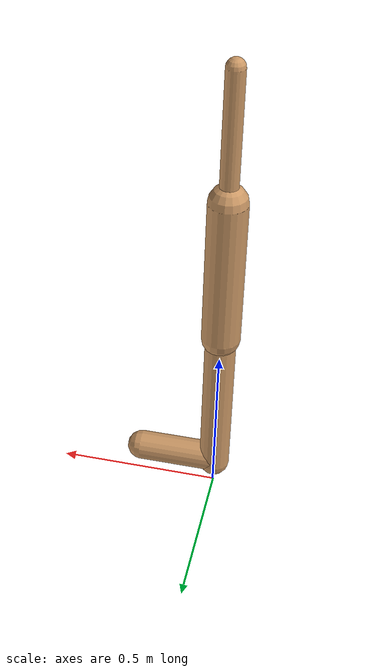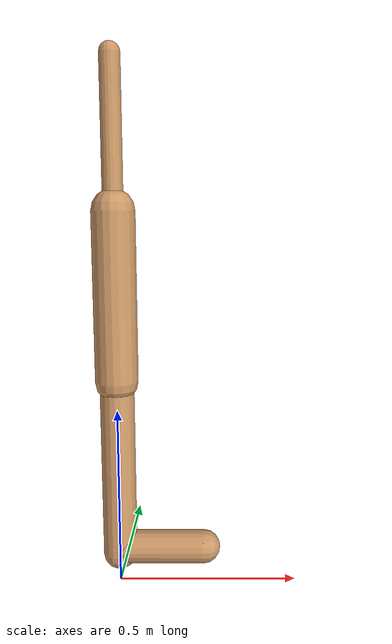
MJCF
<mujoco model="walker2d">
  <compiler angle="degree" coordinate="global" inertiafromgeom="true" />
  <default>
    <joint armature="0.01" damping=".1" limited="true" />
    <geom conaffinity="0" condim="3" contype="1" density="1000" friction="0.8 .1 .1" rgba="0.8 0.6 .4 1" />
  </default>
  <option integrator="RK4" timestep="0.002" />
  <worldbody>

    <body name="torso" pos="0 0 0.0304444901506249">
      <joint armature="0" axis="1 0 0" damping="0" limited="false" name="ignorex" pos="0 0 0" stiffness="0" type="slide" />
      <joint armature="0" axis="0 0 1" damping="0" limited="false" name="ignorez" pos="0 0 0" ref="1.25" stiffness="0" type="slide" />
      <joint armature="0" axis="0 1 0" damping="0" limited="false" name="ignorey" pos="0 0 0" stiffness="0" type="hinge" />
      <geom fromto="0 0 1.45 0 0 1.05" name="torso_geom" size="0.02803882690158247" type="capsule" />
      <body name="thigh">
        <joint axis="0 -1 0" name="thigh_joint" pos="0 0 1.05" range="-150 0" type="hinge" />
        <geom fromto="0.0 0.0 1.05 0.0 0.0 0.585578925718125" name="thigh_geom" size="0.05927657039241784" type="capsule" />
        <body name="leg" pos="0.0 0.0 -0.014421074281875002">
          <joint axis="0 -1 0" name="leg_joint" pos="0 0 0.6" range="-150 0" type="hinge" />
          <geom fromto="0.0 0.0 0.6 0.0 0.0 0.08397658413125006" name="leg_geom" size="0.04742125631393427" type="capsule" />
          <body name="foot" pos="0.0 0.0 -0.016023415868749946">
            <joint axis="0 -1 0" name="foot_joint" pos="0 0 0.1" range="-45 45" type="hinge" />
            <geom fromto="-0.0 0.0 0.1 0.23813403811055942 0.0 0.1" name="foot_geom" size="0.046860829718084335" type="capsule" />
          </body>
        </body>
      </body>

      <body name="thigh_left">
        <joint axis="0 -1 0" name="thigh_left_joint" pos="0 0 1.05" range="-150 0" type="hinge" />
        <geom fromto="0.0 0.0 1.05 0.0 0.0 0.585578925718125" name="thigh_left_geom" rgba=".7 .3 .6 1" size="0.05927657039241784" type="capsule" />
        <body name="leg_left" pos="0.0 0.0 -0.014421074281875002">
          <joint axis="0 -1 0" name="leg_left_joint" pos="0 0 0.6" range="-150 0" type="hinge" />
          <geom fromto="0.0 0.0 0.6 0.0 0.0 0.08397658413125006" name="leg_left_geom" rgba=".7 .3 .6 1" size="0.04742125631393427" type="capsule" />
          <body name="foot_left" pos="0.0 0.0 -0.016023415868749946">
            <joint axis="0 -1 0" name="foot_left_joint" pos="0 0 0.1" range="-45 45" type="hinge" />
            <geom fromto="-0.0 0.0 0.1 0.23813403811055942 0.0 0.1" name="foot_left_geom" rgba=".7 .3 .6 1" size="0.046860829718084335" type="capsule" />
          </body>
        </body>
      </body>
    </body>
  </worldbody>
  <actuator>

    <motor ctrllimited="true" ctrlrange="-1.0 1.0" gear="100" joint="thigh_joint" />
    <motor ctrllimited="true" ctrlrange="-1.0 1.0" gear="100" joint="leg_joint" />
    <motor ctrllimited="true" ctrlrange="-1.0 1.0" gear="100" joint="foot_joint" />
    <motor ctrllimited="true" ctrlrange="-1.0 1.0" gear="100" joint="thigh_left_joint" />
    <motor ctrllimited="true" ctrlrange="-1.0 1.0" gear="100" joint="leg_left_joint" />
    <motor ctrllimited="true" ctrlrange="-1.0 1.0" gear="100" joint="foot_left_joint" />

  </actuator>
</mujoco>
